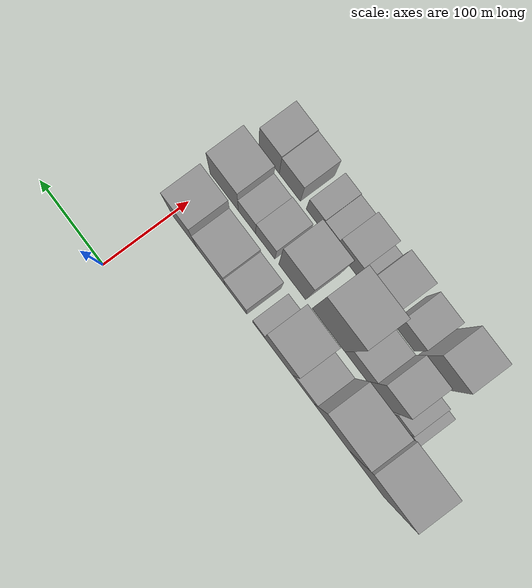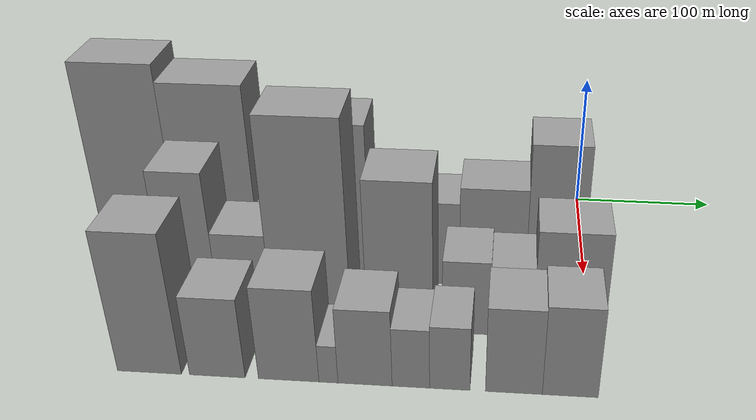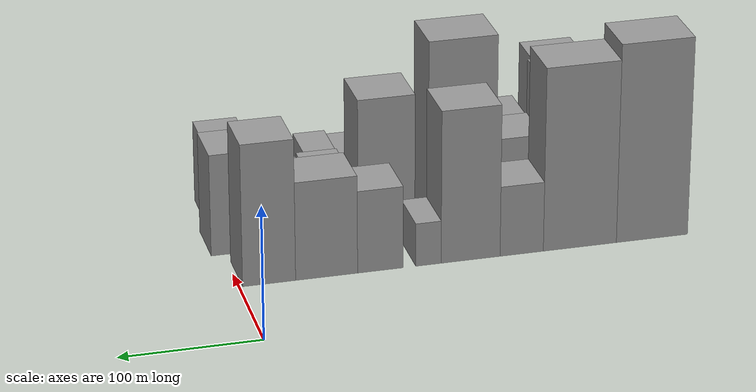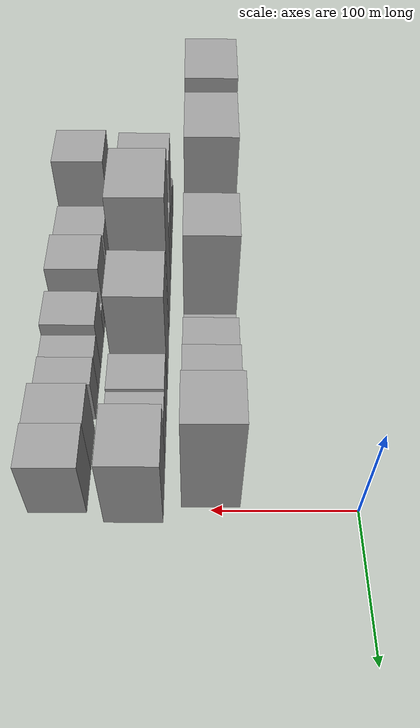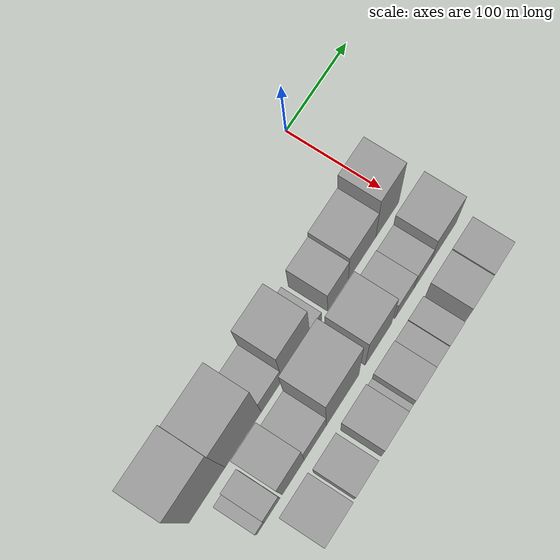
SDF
<sdf version="1.6">
 <world name="default">
  <model name="building_10">
   <static>1</static>
   <pose>100.0000 -301.1103 0 0.000000 0.000000 0.000000</pose>
   <link name="link">
    <pose>0 0 76.50 0 0 0</pose>
    <collision name="collision"><geometry><box><size>40.0000 53.4113 153.0000</size></box></geometry></collision>
    <visual name="visual">
     <cast_shadows>0</cast_shadows>
     <geometry><box><size>40.0000 53.4113 153.0000</size></box></geometry>
     <material>
      <script>
       <uri>model://grey_wall/materials/scripts</uri>
       <uri>model://grey_wall/materials/textures</uri>
       <name>vrc/grey_wall</name>
      </script>
     </material>
    </visual>
   </link>
  </model>
  <model name="building_11">
   <static>1</static>
   <pose>100.0000 -247.2647 0 0.000000 0.000000 0.000000</pose>
   <link name="link">
    <pose>0 0 70.50 0 0 0</pose>
    <collision name="collision"><geometry><box><size>40.0000 54.2798 141.0000</size></box></geometry></collision>
    <visual name="visual">
     <cast_shadows>0</cast_shadows>
     <geometry><box><size>40.0000 54.2798 141.0000</size></box></geometry>
     <material>
      <script>
       <uri>model://grey_wall/materials/scripts</uri>
       <uri>model://grey_wall/materials/textures</uri>
       <name>vrc/grey_wall</name>
      </script>
     </material>
    </visual>
   </link>
  </model>
  <model name="building_12">
   <static>1</static>
   <pose>100.0000 -204.1808 0 0.000000 0.000000 0.000000</pose>
   <link name="link">
    <pose>0 0 27.00 0 0 0</pose>
    <collision name="collision"><geometry><box><size>40.0000 31.8879 54.0000</size></box></geometry></collision>
    <visual name="visual">
     <cast_shadows>0</cast_shadows>
     <geometry><box><size>40.0000 31.8879 54.0000</size></box></geometry>
     <material>
      <script>
       <uri>model://grey_wall/materials/scripts</uri>
       <uri>model://grey_wall/materials/textures</uri>
       <name>vrc/grey_wall</name>
      </script>
     </material>
    </visual>
   </link>
  </model>
  <model name="building_13">
   <static>1</static>
   <pose>100.0000 -166.6848 0 0.000000 0.000000 0.000000</pose>
   <link name="link">
    <pose>0 0 58.50 0 0 0</pose>
    <collision name="collision"><geometry><box><size>40.0000 43.1041 117.0000</size></box></geometry></collision>
    <visual name="visual">
     <cast_shadows>0</cast_shadows>
     <geometry><box><size>40.0000 43.1041 117.0000</size></box></geometry>
     <material>
      <script>
       <uri>model://grey_wall/materials/scripts</uri>
       <uri>model://grey_wall/materials/textures</uri>
       <name>vrc/grey_wall</name>
      </script>
     </material>
    </visual>
   </link>
  </model>
  <model name="building_14">
   <static>1</static>
   <pose>100.0000 -135.9264 0 0.000000 0.000000 0.000000</pose>
   <link name="link">
    <pose>0 0 16.50 0 0 0</pose>
    <collision name="collision"><geometry><box><size>40.0000 18.4126 33.0000</size></box></geometry></collision>
    <visual name="visual">
     <cast_shadows>0</cast_shadows>
     <geometry><box><size>40.0000 18.4126 33.0000</size></box></geometry>
     <material>
      <script>
       <uri>model://grey_wall/materials/scripts</uri>
       <uri>model://grey_wall/materials/textures</uri>
       <name>vrc/grey_wall</name>
      </script>
     </material>
    </visual>
   </link>
  </model>
  <model name="building_15">
   <static>1</static>
   <pose>100.0000 -101.1869 0 0.000000 0.000000 0.000000</pose>
   <link name="link">
    <pose>0 0 31.50 0 0 0</pose>
    <collision name="collision"><geometry><box><size>40.0000 33.0664 63.0000</size></box></geometry></collision>
    <visual name="visual">
     <cast_shadows>0</cast_shadows>
     <geometry><box><size>40.0000 33.0664 63.0000</size></box></geometry>
     <material>
      <script>
       <uri>model://grey_wall/materials/scripts</uri>
       <uri>model://grey_wall/materials/textures</uri>
       <name>vrc/grey_wall</name>
      </script>
     </material>
    </visual>
   </link>
  </model>
  <model name="building_16">
   <static>1</static>
   <pose>100.0000 -62.4404 0 0.000000 0.000000 0.000000</pose>
   <link name="link">
    <pose>0 0 37.50 0 0 0</pose>
    <collision name="collision"><geometry><box><size>40.0000 44.4265 75.0000</size></box></geometry></collision>
    <visual name="visual">
     <cast_shadows>0</cast_shadows>
     <geometry><box><size>40.0000 44.4265 75.0000</size></box></geometry>
     <material>
      <script>
       <uri>model://grey_wall/materials/scripts</uri>
       <uri>model://grey_wall/materials/textures</uri>
       <name>vrc/grey_wall</name>
      </script>
     </material>
    </visual>
   </link>
  </model>
  <model name="building_17">
   <static>1</static>
   <pose>100.0000 -21.3865 0 0.000000 0.000000 0.000000</pose>
   <link name="link">
    <pose>0 0 54.00 0 0 0</pose>
    <collision name="collision"><geometry><box><size>40.0000 37.6813 108.0000</size></box></geometry></collision>
    <visual name="visual">
     <cast_shadows>0</cast_shadows>
     <geometry><box><size>40.0000 37.6813 108.0000</size></box></geometry>
     <material>
      <script>
       <uri>model://grey_wall/materials/scripts</uri>
       <uri>model://grey_wall/materials/textures</uri>
       <name>vrc/grey_wall</name>
      </script>
     </material>
    </visual>
   </link>
  </model>
  <model name="building_46">
   <static>1</static>
   <pose>152.0000 -299.5391 0 0.000000 0.000000 0.000000</pose>
   <link name="link">
    <pose>0 0 13.50 0 0 0</pose>
    <collision name="collision"><geometry><box><size>40.0000 12.0394 27.0000</size></box></geometry></collision>
    <visual name="visual">
     <cast_shadows>0</cast_shadows>
     <geometry><box><size>40.0000 12.0394 27.0000</size></box></geometry>
     <material>
      <script>
       <uri>model://grey_wall/materials/scripts</uri>
       <uri>model://grey_wall/materials/textures</uri>
       <name>vrc/grey_wall</name>
      </script>
     </material>
    </visual>
   </link>
  </model>
  <model name="building_47">
   <static>1</static>
   <pose>152.0000 -282.0845 0 0.000000 0.000000 0.000000</pose>
   <link name="link">
    <pose>0 0 19.50 0 0 0</pose>
    <collision name="collision"><geometry><box><size>40.0000 22.8698 39.0000</size></box></geometry></collision>
    <visual name="visual">
     <cast_shadows>0</cast_shadows>
     <geometry><box><size>40.0000 22.8698 39.0000</size></box></geometry>
     <material>
      <script>
       <uri>model://grey_wall/materials/scripts</uri>
       <uri>model://grey_wall/materials/textures</uri>
       <name>vrc/grey_wall</name>
      </script>
     </material>
    </visual>
   </link>
  </model>
  <model name="building_48">
   <static>1</static>
   <pose>152.0000 -250.8772 0 0.000000 0.000000 0.000000</pose>
   <link name="link">
    <pose>0 0 54.00 0 0 0</pose>
    <collision name="collision"><geometry><box><size>40.0000 33.5448 108.0000</size></box></geometry></collision>
    <visual name="visual">
     <cast_shadows>0</cast_shadows>
     <geometry><box><size>40.0000 33.5448 108.0000</size></box></geometry>
     <material>
      <script>
       <uri>model://grey_wall/materials/scripts</uri>
       <uri>model://grey_wall/materials/textures</uri>
       <name>vrc/grey_wall</name>
      </script>
     </material>
    </visual>
   </link>
  </model>
  <model name="building_49">
   <static>1</static>
   <pose>152.0000 -217.2099 0 0.000000 0.000000 0.000000</pose>
   <link name="link">
    <pose>0 0 33.00 0 0 0</pose>
    <collision name="collision"><geometry><box><size>40.0000 33.7898 66.0000</size></box></geometry></collision>
    <visual name="visual">
     <cast_shadows>0</cast_shadows>
     <geometry><box><size>40.0000 33.7898 66.0000</size></box></geometry>
     <material>
      <script>
       <uri>model://grey_wall/materials/scripts</uri>
       <uri>model://grey_wall/materials/textures</uri>
       <name>vrc/grey_wall</name>
      </script>
     </material>
    </visual>
   </link>
  </model>
  <model name="building_50">
   <static>1</static>
   <pose>152.0000 -175.0840 0 0.000000 0.000000 0.000000</pose>
   <link name="link">
    <pose>0 0 73.50 0 0 0</pose>
    <collision name="collision"><geometry><box><size>40.0000 50.4621 147.0000</size></box></geometry></collision>
    <visual name="visual">
     <cast_shadows>0</cast_shadows>
     <geometry><box><size>40.0000 50.4621 147.0000</size></box></geometry>
     <material>
      <script>
       <uri>model://grey_wall/materials/scripts</uri>
       <uri>model://grey_wall/materials/textures</uri>
       <name>vrc/grey_wall</name>
      </script>
     </material>
    </visual>
   </link>
  </model>
  <model name="building_51">
   <static>1</static>
   <pose>152.0000 -118.9574 0 0.000000 0.000000 0.000000</pose>
   <link name="link">
    <pose>0 0 54.00 0 0 0</pose>
    <collision name="collision"><geometry><box><size>40.0000 41.7911 108.0000</size></box></geometry></collision>
    <visual name="visual">
     <cast_shadows>0</cast_shadows>
     <geometry><box><size>40.0000 41.7911 108.0000</size></box></geometry>
     <material>
      <script>
       <uri>model://grey_wall/materials/scripts</uri>
       <uri>model://grey_wall/materials/textures</uri>
       <name>vrc/grey_wall</name>
      </script>
     </material>
    </visual>
   </link>
  </model>
  <model name="building_52">
   <static>1</static>
   <pose>152.0000 -77.1667 0 0.000000 0.000000 0.000000</pose>
   <link name="link">
    <pose>0 0 27.00 0 0 0</pose>
    <collision name="collision"><geometry><box><size>40.0000 29.7903 54.0000</size></box></geometry></collision>
    <visual name="visual">
     <cast_shadows>0</cast_shadows>
     <geometry><box><size>40.0000 29.7903 54.0000</size></box></geometry>
     <material>
      <script>
       <uri>model://grey_wall/materials/scripts</uri>
       <uri>model://grey_wall/materials/textures</uri>
       <name>vrc/grey_wall</name>
      </script>
     </material>
    </visual>
   </link>
  </model>
  <model name="building_53">
   <static>1</static>
   <pose>152.0000 -48.7767 0 0.000000 0.000000 0.000000</pose>
   <link name="link">
    <pose>0 0 25.50 0 0 0</pose>
    <collision name="collision"><geometry><box><size>40.0000 26.9896 51.0000</size></box></geometry></collision>
    <visual name="visual">
     <cast_shadows>0</cast_shadows>
     <geometry><box><size>40.0000 26.9896 51.0000</size></box></geometry>
     <material>
      <script>
       <uri>model://grey_wall/materials/scripts</uri>
       <uri>model://grey_wall/materials/textures</uri>
       <name>vrc/grey_wall</name>
      </script>
     </material>
    </visual>
   </link>
  </model>
  <model name="building_54">
   <static>1</static>
   <pose>152.0000 -13.2022 0 0.000000 0.000000 0.000000</pose>
   <link name="link">
    <pose>0 0 39.00 0 0 0</pose>
    <collision name="collision"><geometry><box><size>40.0000 44.1593 78.0000</size></box></geometry></collision>
    <visual name="visual">
     <cast_shadows>0</cast_shadows>
     <geometry><box><size>40.0000 44.1593 78.0000</size></box></geometry>
     <material>
      <script>
       <uri>model://grey_wall/materials/scripts</uri>
       <uri>model://grey_wall/materials/textures</uri>
       <name>vrc/grey_wall</name>
      </script>
     </material>
    </visual>
   </link>
  </model>
  <model name="building_79">
   <static>1</static>
   <pose>204.0000 -263.0220 0 0.000000 0.000000 0.000000</pose>
   <link name="link">
    <pose>0 0 49.50 0 0 0</pose>
    <collision name="collision"><geometry><box><size>40.0000 38.9670 99.0000</size></box></geometry></collision>
    <visual name="visual">
     <cast_shadows>0</cast_shadows>
     <geometry><box><size>40.0000 38.9670 99.0000</size></box></geometry>
     <material>
      <script>
       <uri>model://grey_wall/materials/scripts</uri>
       <uri>model://grey_wall/materials/textures</uri>
       <name>vrc/grey_wall</name>
      </script>
     </material>
    </visual>
   </link>
  </model>
  <model name="building_80">
   <static>1</static>
   <pose>204.0000 -221.7472 0 0.000000 0.000000 0.000000</pose>
   <link name="link">
    <pose>0 0 28.50 0 0 0</pose>
    <collision name="collision"><geometry><box><size>40.0000 33.5825 57.0000</size></box></geometry></collision>
    <visual name="visual">
     <cast_shadows>0</cast_shadows>
     <geometry><box><size>40.0000 33.5825 57.0000</size></box></geometry>
     <material>
      <script>
       <uri>model://grey_wall/materials/scripts</uri>
       <uri>model://grey_wall/materials/textures</uri>
       <name>vrc/grey_wall</name>
      </script>
     </material>
    </visual>
   </link>
  </model>
  <model name="building_81">
   <static>1</static>
   <pose>204.0000 -178.8654 0 0.000000 0.000000 0.000000</pose>
   <link name="link">
    <pose>0 0 33.00 0 0 0</pose>
    <collision name="collision"><geometry><box><size>40.0000 36.1811 66.0000</size></box></geometry></collision>
    <visual name="visual">
     <cast_shadows>0</cast_shadows>
     <geometry><box><size>40.0000 36.1811 66.0000</size></box></geometry>
     <material>
      <script>
       <uri>model://grey_wall/materials/scripts</uri>
       <uri>model://grey_wall/materials/textures</uri>
       <name>vrc/grey_wall</name>
      </script>
     </material>
    </visual>
   </link>
  </model>
  <model name="building_82">
   <static>1</static>
   <pose>204.0000 -155.1031 0 0.000000 0.000000 0.000000</pose>
   <link name="link">
    <pose>0 0 13.50 0 0 0</pose>
    <collision name="collision"><geometry><box><size>40.0000 11.3435 27.0000</size></box></geometry></collision>
    <visual name="visual">
     <cast_shadows>0</cast_shadows>
     <geometry><box><size>40.0000 11.3435 27.0000</size></box></geometry>
     <material>
      <script>
       <uri>model://grey_wall/materials/scripts</uri>
       <uri>model://grey_wall/materials/textures</uri>
       <name>vrc/grey_wall</name>
      </script>
     </material>
    </visual>
   </link>
  </model>
  <model name="building_83">
   <static>1</static>
   <pose>204.0000 -133.4371 0 0.000000 0.000000 0.000000</pose>
   <link name="link">
    <pose>0 0 27.00 0 0 0</pose>
    <collision name="collision"><geometry><box><size>40.0000 31.9885 54.0000</size></box></geometry></collision>
    <visual name="visual">
     <cast_shadows>0</cast_shadows>
     <geometry><box><size>40.0000 31.9885 54.0000</size></box></geometry>
     <material>
      <script>
       <uri>model://grey_wall/materials/scripts</uri>
       <uri>model://grey_wall/materials/textures</uri>
       <name>vrc/grey_wall</name>
      </script>
     </material>
    </visual>
   </link>
  </model>
  <model name="building_84">
   <static>1</static>
   <pose>204.0000 -106.4493 0 0.000000 0.000000 0.000000</pose>
   <link name="link">
    <pose>0 0 21.00 0 0 0</pose>
    <collision name="collision"><geometry><box><size>40.0000 21.9872 42.0000</size></box></geometry></collision>
    <visual name="visual">
     <cast_shadows>0</cast_shadows>
     <geometry><box><size>40.0000 21.9872 42.0000</size></box></geometry>
     <material>
      <script>
       <uri>model://grey_wall/materials/scripts</uri>
       <uri>model://grey_wall/materials/textures</uri>
       <name>vrc/grey_wall</name>
      </script>
     </material>
    </visual>
   </link>
  </model>
  <model name="building_85">
   <static>1</static>
   <pose>204.0000 -83.6619 0 0.000000 0.000000 0.000000</pose>
   <link name="link">
    <pose>0 0 22.50 0 0 0</pose>
    <collision name="collision"><geometry><box><size>40.0000 23.5876 45.0000</size></box></geometry></collision>
    <visual name="visual">
     <cast_shadows>0</cast_shadows>
     <geometry><box><size>40.0000 23.5876 45.0000</size></box></geometry>
     <material>
      <script>
       <uri>model://grey_wall/materials/scripts</uri>
       <uri>model://grey_wall/materials/textures</uri>
       <name>vrc/grey_wall</name>
      </script>
     </material>
    </visual>
   </link>
  </model>
  <model name="building_86">
   <static>1</static>
   <pose>204.0000 -46.4274 0 0.000000 0.000000 0.000000</pose>
   <link name="link">
    <pose>0 0 30.00 0 0 0</pose>
    <collision name="collision"><geometry><box><size>40.0000 32.8815 60.0000</size></box></geometry></collision>
    <visual name="visual">
     <cast_shadows>0</cast_shadows>
     <geometry><box><size>40.0000 32.8815 60.0000</size></box></geometry>
     <material>
      <script>
       <uri>model://grey_wall/materials/scripts</uri>
       <uri>model://grey_wall/materials/textures</uri>
       <name>vrc/grey_wall</name>
      </script>
     </material>
    </visual>
   </link>
  </model>
  <model name="building_87">
   <static>1</static>
   <pose>204.0000 -13.9440 0 0.000000 0.000000 0.000000</pose>
   <link name="link">
    <pose>0 0 31.50 0 0 0</pose>
    <collision name="collision"><geometry><box><size>40.0000 32.0853 63.0000</size></box></geometry></collision>
    <visual name="visual">
     <cast_shadows>0</cast_shadows>
     <geometry><box><size>40.0000 32.0853 63.0000</size></box></geometry>
     <material>
      <script>
       <uri>model://grey_wall/materials/scripts</uri>
       <uri>model://grey_wall/materials/textures</uri>
       <name>vrc/grey_wall</name>
      </script>
     </material>
    </visual>
   </link>
  </model>
 </world>
</sdf>
